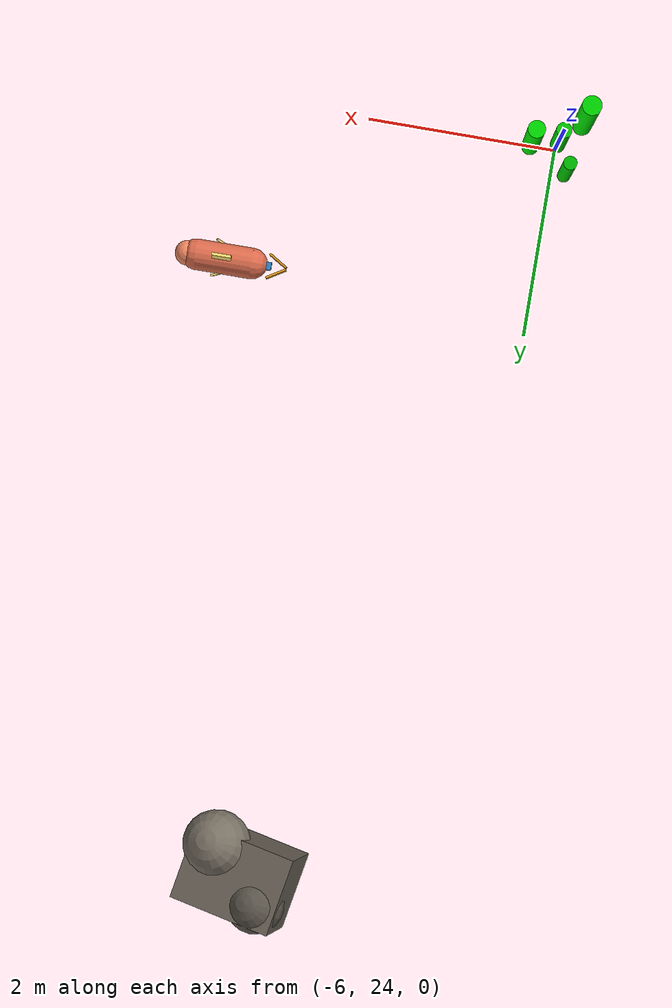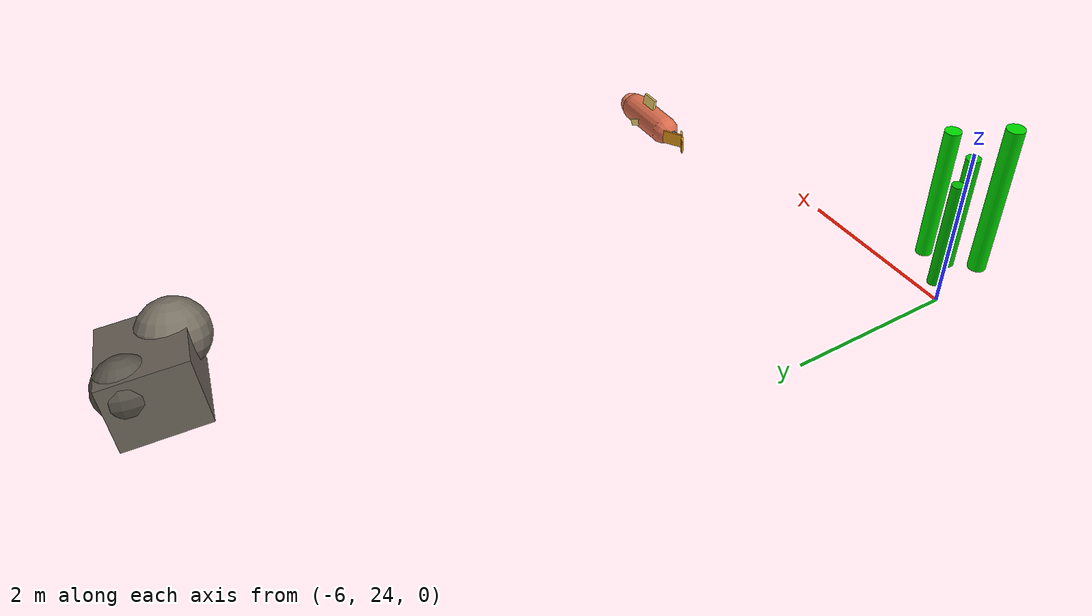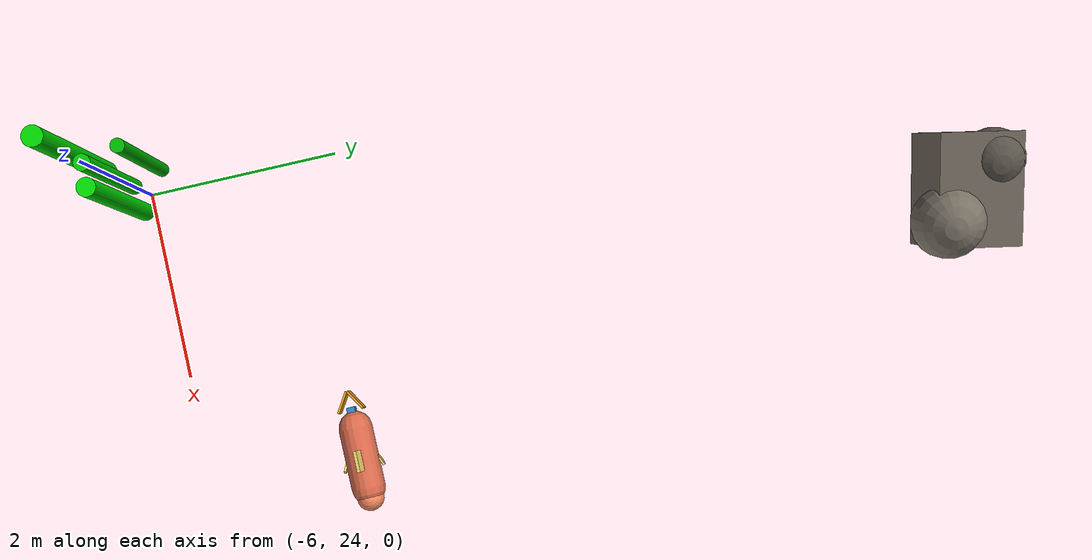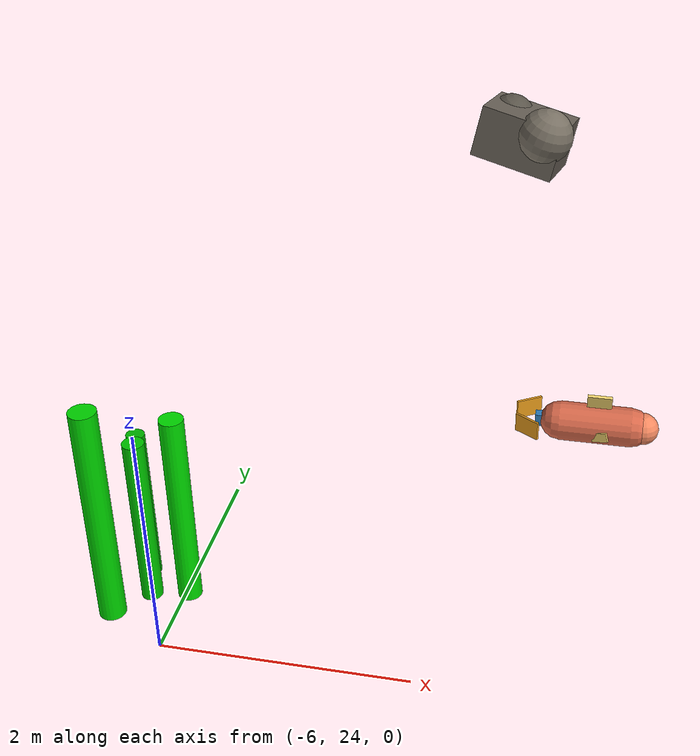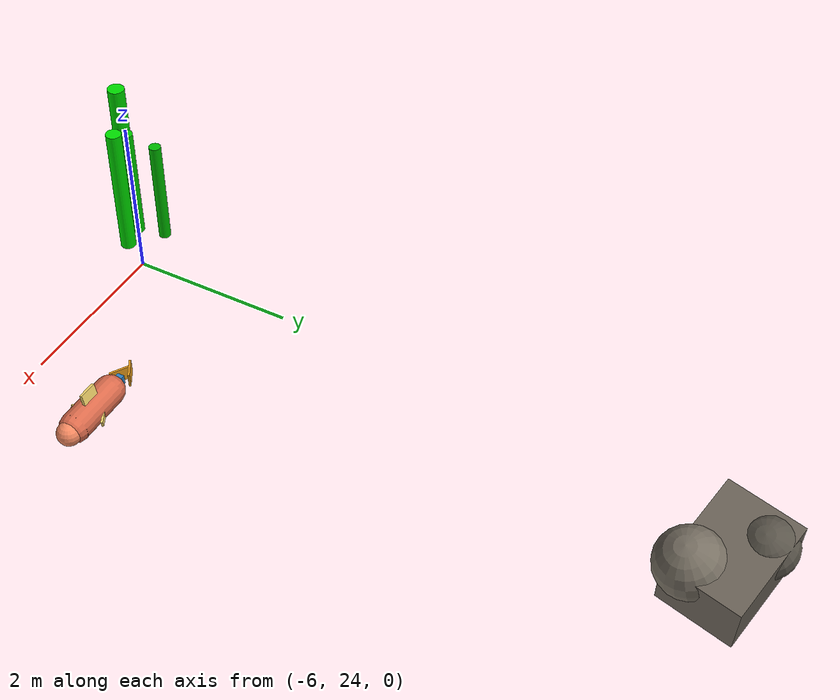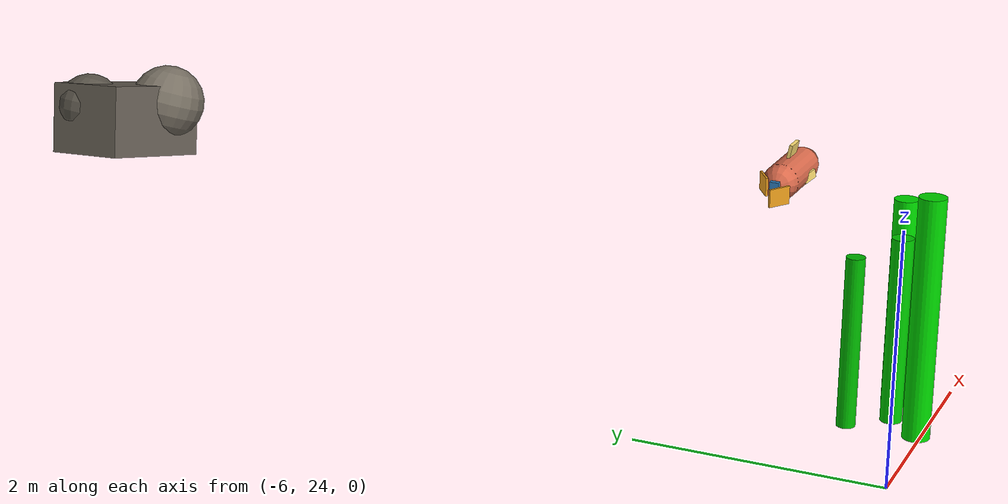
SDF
<sdf version="1.9">
 <world name="ocean_world">
  <model name="rock5">
   <static>true</static>
   <pose>-4 32 1.35 -0.1 0.2 -0.2</pose>
   <link name="link">
    <inertial><mass>320</mass></inertial>
    <collision name="c1"><geometry><box><size>1.05 0.80 0.64</size></box></geometry></collision>
    <collision name="c2">
     <pose>0.3 -0.25 0.16 0.3 0.1 0.2</pose>
     <geometry><sphere><radius>0.33</radius></sphere></geometry>
    </collision>
    <collision name="c3">
     <pose>-0.28 0.22 0.12 0 0.2 -0.2</pose>
     <geometry><sphere><radius>0.29</radius></sphere></geometry>
    </collision>
    <visual name="v1">
     <geometry><box><size>1.08 0.82 0.66</size></box></geometry>
     <material><ambient>0.41 0.38 0.34 1</ambient><diffuse>0.41 0.38 0.34 1</diffuse></material>
    </visual>
    <visual name="v2">
     <pose>0.3 -0.25 0.17 0.2 0.1 0.2</pose>
     <geometry><sphere><radius>0.35</radius></sphere></geometry>
     <material><ambient>0.47 0.44 0.39 1</ambient><diffuse>0.47 0.44 0.39 1</diffuse></material>
    </visual>
    <visual name="v3">
     <pose>-0.28 0.2 0.12 0.1 0.2 -0.1</pose>
     <geometry><sphere><radius>0.30</radius></sphere></geometry>
     <material><ambient>0.35 0.33 0.29 1</ambient><diffuse>0.35 0.33 0.29 1</diffuse></material>
    </visual>
   </link>
  </model>
  <model name="seaweed9">
   <static>false</static>
   <pose>-6.00 24.00 1.25 0 0 0</pose>
   <link name="body9">
    <gravity>false</gravity>
    <inertial><mass>1</mass></inertial>
    <visual name="visual">
     <geometry><cylinder><radius>0.08</radius><length>1.4</length></cylinder></geometry>
     <material><ambient>0 0.79 0 1</ambient><diffuse>0 0.79 0 1</diffuse></material>
    </visual>
   </link>
   <plugin filename="/home/kousik/fish_ai_plugin/build/libFishAI.so" name="FishAI"/>
  </model>
  <model name="seaweed10">
   <static>false</static>
   <pose>-5.72 24.06 1.35 0 0 0</pose>
   <link name="body10">
    <gravity>false</gravity>
    <inertial><mass>1</mass></inertial>
    <visual name="visual">
     <geometry><cylinder><radius>0.09</radius><length>1.6</length></cylinder></geometry>
     <material><ambient>0 0.87 0 1</ambient><diffuse>0 0.87 0 1</diffuse></material>
    </visual>
   </link>
   <plugin filename="/home/kousik/fish_ai_plugin/build/libFishAI.so" name="FishAI"/>
  </model>
  <model name="seaweed11">
   <static>false</static>
   <pose>-6.12 24.30 1.15 0 0 0</pose>
   <link name="body11">
    <gravity>false</gravity>
    <inertial><mass>1</mass></inertial>
    <visual name="visual">
     <geometry><cylinder><radius>0.07</radius><length>1.3</length></cylinder></geometry>
     <material><ambient>0 0.73 0 1</ambient><diffuse>0 0.73 0 1</diffuse></material>
    </visual>
   </link>
   <plugin filename="/home/kousik/fish_ai_plugin/build/libFishAI.so" name="FishAI"/>
  </model>
  <model name="seaweed12">
   <static>false</static>
   <pose>-6.22 23.76 1.45 0 0 0</pose>
   <link name="body12">
    <gravity>false</gravity>
    <inertial><mass>1</mass></inertial>
    <visual name="visual">
     <geometry><cylinder><radius>0.10</radius><length>1.8</length></cylinder></geometry>
     <material><ambient>0 0.85 0 1</ambient><diffuse>0 0.85 0 1</diffuse></material>
    </visual>
   </link>
   <plugin filename="/home/kousik/fish_ai_plugin/build/libFishAI.so" name="FishAI"/>
  </model>
  <model name="fish11">
   <static>false</static>
   <pose>-2.8 25.8 1.30 0 0 0</pose>
   <link name="body11">
    <gravity>false</gravity>
    <inertial><mass>5</mass></inertial>
    <collision name="body_collision">
     <pose>0 0 0 0 1.5708 0</pose>
     <geometry><capsule><radius>0.16</radius><length>0.58</length></capsule></geometry>
    </collision>
    <visual name="body_visual">
     <pose>0 0 0 0 1.5708 0</pose>
     <geometry><capsule><radius>0.16</radius><length>0.58</length></capsule></geometry>
     <material><ambient>0.86 0.42 0.30 1</ambient><diffuse>0.86 0.42 0.30 1</diffuse></material>
    </visual>
    <visual name="head_visual">
     <pose>0.38 0 0 0 0 0</pose>
     <geometry><sphere><radius>0.13</radius></sphere></geometry>
     <material><ambient>0.96 0.54 0.38 1</ambient><diffuse>0.96 0.54 0.38 1</diffuse></material>
    </visual>
    <visual name="eye_left">
     <pose>0.44 0.06 0.04 0 0 0</pose>
     <geometry><sphere><radius>0.02</radius></sphere></geometry>
     <material><ambient>0 0 0 1</ambient><diffuse>0 0 0 1</diffuse></material>
    </visual>
    <visual name="eye_right">
     <pose>0.44 -0.06 0.04 0 0 0</pose>
     <geometry><sphere><radius>0.02</radius></sphere></geometry>
     <material><ambient>0 0 0 1</ambient><diffuse>0 0 0 1</diffuse></material>
    </visual>
    <visual name="dorsal_fin">
     <pose>0.02 0 0.20 0.2 0 0</pose>
     <geometry><box><size>0.20 0.03 0.15</size></box></geometry>
     <material><ambient>0.98 0.86 0.44 1</ambient><diffuse>0.98 0.86 0.44 1</diffuse></material>
    </visual>
    <visual name="left_fin">
     <pose>0.04 0.16 -0.02 0 0.3 0.4</pose>
     <geometry><box><size>0.14 0.02 0.08</size></box></geometry>
     <material><ambient>0.98 0.86 0.44 1</ambient><diffuse>0.98 0.86 0.44 1</diffuse></material>
    </visual>
    <visual name="right_fin">
     <pose>0.04 -0.16 -0.02 0 -0.3 -0.4</pose>
     <geometry><box><size>0.14 0.02 0.08</size></box></geometry>
     <material><ambient>0.98 0.86 0.44 1</ambient><diffuse>0.98 0.86 0.44 1</diffuse></material>
    </visual>
   </link>
   <link name="tail11">
    <gravity>false</gravity>
    <inertial><mass>1</mass></inertial>
    <pose>-0.43 0 0 0 0 0</pose>
    <collision name="tail_collision"><geometry><box><size>0.10 0.08 0.12</size></box></geometry></collision>
    <visual name="tail_stem">
     <geometry><box><size>0.12 0.08 0.10</size></box></geometry>
     <material><ambient>0.18 0.50 0.75 1</ambient><diffuse>0.18 0.50 0.75 1</diffuse></material>
    </visual>
    <visual name="tail_top">
     <pose>-0.12 0.07 0.05 0 0 0.55</pose>
     <geometry><box><size>0.22 0.02 0.16</size></box></geometry>
     <material><ambient>0.92 0.62 0.11 1</ambient><diffuse>0.92 0.62 0.11 1</diffuse></material>
    </visual>
    <visual name="tail_bottom">
     <pose>-0.12 -0.07 -0.05 0 0 -0.55</pose>
     <geometry><box><size>0.22 0.02 0.16</size></box></geometry>
     <material><ambient>0.92 0.62 0.11 1</ambient><diffuse>0.92 0.62 0.11 1</diffuse></material>
    </visual>
   </link>
   <joint name="tail_joint11" type="revolute">
    <parent>body11</parent>
    <child>tail11</child>
    <axis>
     <xyz>0 0 1</xyz>
     <limit><lower>-0.8</lower><upper>0.8</upper><effort>5</effort><velocity>5</velocity></limit>
    </axis>
   </joint>
   <plugin filename="/home/kousik/fish_ai_plugin/build/libFishAI.so" name="FishAI"/>
  </model>
 </world>
</sdf>
